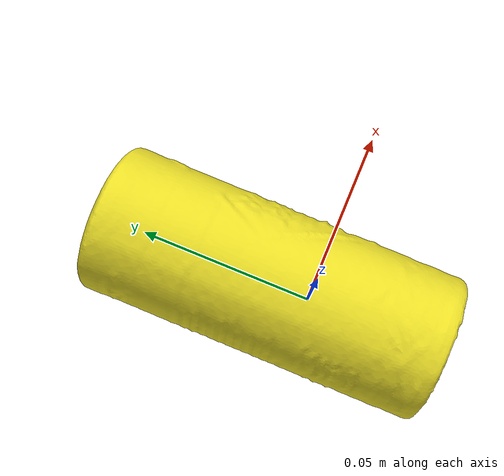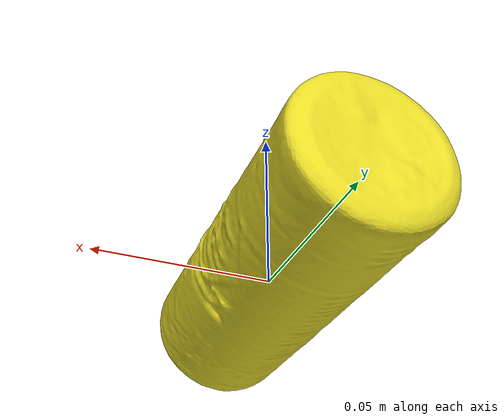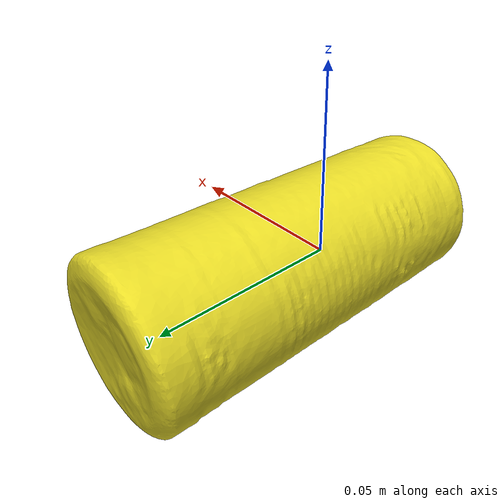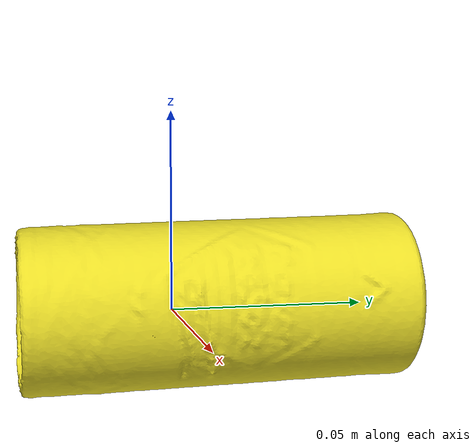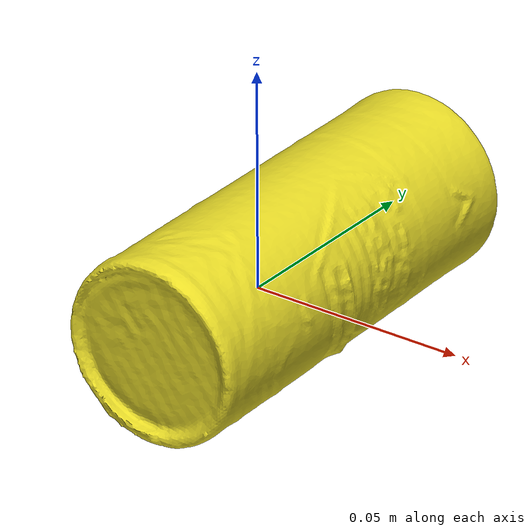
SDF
<?xml version='1.0'?>
<sdf version="1.4">
  <model name="YellowSaltCylinderSmall">
    <static>false</static>
    <link name="link">
      <inertial>
        <pose>0.0005560528098886404 0.01129400728787426 0.0015566452994299697 -1.4435412368477012 -1.4324777672018607 -0.12510351385948124</pose>
        <mass>0.014000814504350255</mass>
        <inertia>
          <ixx>1.3067613947963557e-05</ixx>
          <ixy>1.3700568111879606e-21</ixy>
          <ixz>1.919375064346621e-21</ixz>
          <iyy>1.3042640998937678e-05</iyy>
          <iyz>2.5994699360767336e-22</iyz>
          <izz>3.1246154735194178e-06</izz>
        </inertia>
      </inertial>
      <collision name="collision">
        <geometry>
          <mesh>
            <!-- Use a downsampled mesh for collisions -->
            <uri>model:///YellowSaltCylinderSmall/YellowSaltCylinderSmall_250_collision.obj</uri>
	        </mesh>
        </geometry>
        <surface>
      </surface>
      </collision>
      <visual name="visual">
        <geometry>
          <mesh>
            <uri>model:///YellowSaltCylinderSmall/YellowSaltCylinderSmall_25k_tex.obj</uri>
	        </mesh>
        </geometry>
        <material>
          <script>
            <uri>model:///YellowSaltCylinderSmall/YellowSaltCylinderSmall.material</uri>
            <name>YellowSaltCylinderSmall</name>
          </script>
        </material>
      </visual>
    </link>
  </model>
</sdf>
